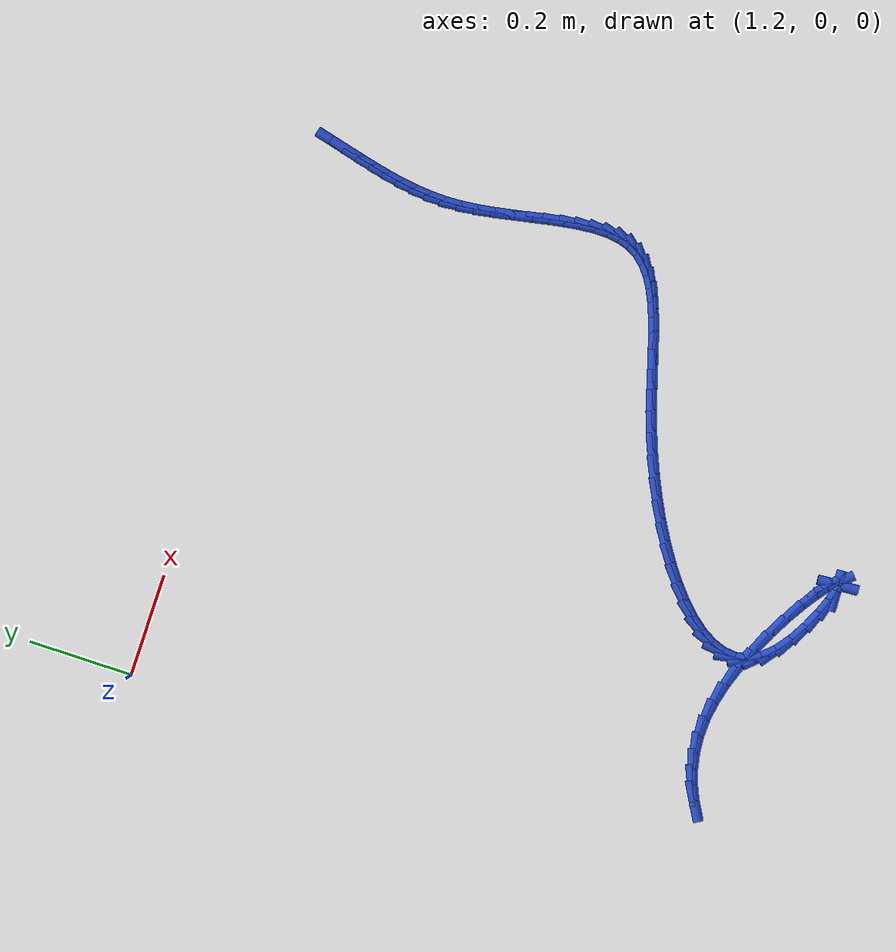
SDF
<sdf version="1.6">
 <world name="default">
  <model name="ground_plane">
   <static>1</static>
   <link name="link">
    <collision name="collision">
     <geometry><plane><normal>0 0 1</normal><size>100 100</size></plane></geometry>
     <surface><friction><ode><mu>100</mu><mu2>50</mu2></ode></friction></surface>
    </collision>
    <visual name="visual">
     <cast_shadows>0</cast_shadows>
     <geometry><plane><normal>0 0 1</normal><size>100 100</size></plane></geometry>
     <material>
      <script><uri>file://media/materials/scripts/gazebo.material</uri><name>Gazebo/WhiteGlow</name></script>
     </material>
    </visual>
   </link>
  </model>
  <model name="line">
   <link name="link_138">
    <pose>2.2774272784423375 -0.04782613580901961 0.01 0 1.57 1.3276419151975256</pose>
    <collision name="collision">
     <geometry><cylinder><radius>0.01</radius><length>0.08</length></cylinder></geometry>
    </collision>
    <visual name="visual">
     <material>
      <script><name>Gazebo/Blue</name><uri>file://media/materials/scripts/gazebo.material</uri></script>
     </material>
     <geometry><cylinder><radius>0.01</radius><length>0.08</length></cylinder></geometry>
    </visual>
   </link>
   <link name="link_139">
    <pose>2.2702082592243316 -0.07692773679852999 0.01 0 1.57 1.3271912694191266</pose>
    <collision name="collision">
     <geometry><cylinder><radius>0.01</radius><length>0.08</length></cylinder></geometry>
    </collision>
    <visual name="visual">
     <material>
      <script><name>Gazebo/Blue</name><uri>file://media/materials/scripts/gazebo.material</uri></script>
     </material>
     <geometry><cylinder><radius>0.01</radius><length>0.08</length></cylinder></geometry>
    </visual>
   </link>
   <link name="link_140">
    <pose>2.26309164769325 -0.10556128326286922 0.01 0 1.57 1.3374437470087495</pose>
    <collision name="collision">
     <geometry><cylinder><radius>0.01</radius><length>0.08</length></cylinder></geometry>
    </collision>
    <visual name="visual">
     <material>
      <script><name>Gazebo/Blue</name><uri>file://media/materials/scripts/gazebo.material</uri></script>
     </material>
     <geometry><cylinder><radius>0.01</radius><length>0.08</length></cylinder></geometry>
    </visual>
   </link>
   <link name="link_141">
    <pose>2.2563505228808722 -0.13392316893767106 0.01 0 1.57 1.3586506619026855</pose>
    <collision name="collision">
     <geometry><cylinder><radius>0.01</radius><length>0.08</length></cylinder></geometry>
    </collision>
    <visual name="visual">
     <material>
      <script><name>Gazebo/Blue</name><uri>file://media/materials/scripts/gazebo.material</uri></script>
     </material>
     <geometry><cylinder><radius>0.01</radius><length>0.08</length></cylinder></geometry>
    </visual>
   </link>
   <link name="link_142">
    <pose>2.250257963818977 -0.16220978755857063 0.01 0 1.57 1.3907428237051098</pose>
    <collision name="collision">
     <geometry><cylinder><radius>0.01</radius><length>0.08</length></cylinder></geometry>
    </collision>
    <visual name="visual">
     <material>
      <script><name>Gazebo/Blue</name><uri>file://media/materials/scripts/gazebo.material</uri></script>
     </material>
     <geometry><cylinder><radius>0.01</radius><length>0.08</length></cylinder></geometry>
    </visual>
   </link>
   <link name="link_143">
    <pose>2.245087049539344 -0.19061753286120275 0.01 0 1.57 1.4332490091658723</pose>
    <collision name="collision">
     <geometry><cylinder><radius>0.01</radius><length>0.08</length></cylinder></geometry>
    </collision>
    <visual name="visual">
     <material>
      <script><name>Gazebo/Blue</name><uri>file://media/materials/scripts/gazebo.material</uri></script>
     </material>
     <geometry><cylinder><radius>0.01</radius><length>0.08</length></cylinder></geometry>
    </visual>
   </link>
   <link name="link_144">
    <pose>2.24111085907375 -0.219342798581202 0.01 0 1.57 1.4852172846113332</pose>
    <collision name="collision">
     <geometry><cylinder><radius>0.01</radius><length>0.08</length></cylinder></geometry>
    </collision>
    <visual name="visual">
     <material>
      <script><name>Gazebo/Blue</name><uri>file://media/materials/scripts/gazebo.material</uri></script>
     </material>
     <geometry><cylinder><radius>0.01</radius><length>0.08</length></cylinder></geometry>
    </visual>
   </link>
   <link name="link_145">
    <pose>2.2386024714539747 -0.24858197845420324 0.01 0 1.57 1.5451752610625398</pose>
    <collision name="collision">
     <geometry><cylinder><radius>0.01</radius><length>0.08</length></cylinder></geometry>
    </collision>
    <visual name="visual">
     <material>
      <script><name>Gazebo/Blue</name><uri>file://media/materials/scripts/gazebo.material</uri></script>
     </material>
     <geometry><cylinder><radius>0.01</radius><length>0.08</length></cylinder></geometry>
    </visual>
   </link>
   <link name="link_146">
    <pose>2.237834965711797 -0.278531466215842 0.01 0 1.57 -1.5304236022121271</pose>
    <collision name="collision">
     <geometry><cylinder><radius>0.01</radius><length>0.08</length></cylinder></geometry>
    </collision>
    <visual name="visual">
     <material>
      <script><name>Gazebo/Blue</name><uri>file://media/materials/scripts/gazebo.material</uri></script>
     </material>
     <geometry><cylinder><radius>0.01</radius><length>0.08</length></cylinder></geometry>
    </visual>
   </link>
   <link name="link_147">
    <pose>2.2390813906234137 -0.30938763568670624 0.01 0 1.57 -1.465590602631579</pose>
    <collision name="collision">
     <geometry><cylinder><radius>0.01</radius><length>0.08</length></cylinder></geometry>
    </collision>
    <visual name="visual">
     <material>
      <script><name>Gazebo/Blue</name><uri>file://media/materials/scripts/gazebo.material</uri></script>
     </material>
     <geometry><cylinder><radius>0.01</radius><length>0.08</length></cylinder></geometry>
    </visual>
   </link>
   <link name="link_148">
    <pose>2.2424442932204673 -0.3412346318117775 0.01 0 1.57 -1.4180277893143194</pose>
    <collision name="collision">
     <geometry><cylinder><radius>0.01</radius><length>0.08</length></cylinder></geometry>
    </collision>
    <visual name="visual">
     <material>
      <script><name>Gazebo/Blue</name><uri>file://media/materials/scripts/gazebo.material</uri></script>
     </material>
     <geometry><cylinder><radius>0.01</radius><length>0.08</length></cylinder></geometry>
    </visual>
   </link>
   <link name="link_149">
    <pose>2.2474553760674434 -0.37378085421527685 0.01 0 1.57 -1.3881673383838014</pose>
    <collision name="collision">
     <geometry><cylinder><radius>0.01</radius><length>0.08</length></cylinder></geometry>
    </collision>
    <visual name="visual">
     <material>
      <script><name>Gazebo/Blue</name><uri>file://media/materials/scripts/gazebo.material</uri></script>
     </material>
     <geometry><cylinder><radius>0.01</radius><length>0.08</length></cylinder></geometry>
    </visual>
   </link>
   <link name="link_150">
    <pose>2.253527013107686 -0.4066561571844655 0.01 0 1.57 -1.3740533834683193</pose>
    <collision name="collision">
     <geometry><cylinder><radius>0.01</radius><length>0.08</length></cylinder></geometry>
    </collision>
    <visual name="visual">
     <material>
      <script><name>Gazebo/Blue</name><uri>file://media/materials/scripts/gazebo.material</uri></script>
     </material>
     <geometry><cylinder><radius>0.01</radius><length>0.08</length></cylinder></geometry>
    </visual>
   </link>
   <link name="link_151">
    <pose>2.2600715782845433 -0.43949039500660486 0.01 0 1.57 -1.3750246088527942</pose>
    <collision name="collision">
     <geometry><cylinder><radius>0.01</radius><length>0.08</length></cylinder></geometry>
    </collision>
    <visual name="visual">
     <material>
      <script><name>Gazebo/Blue</name><uri>file://media/materials/scripts/gazebo.material</uri></script>
     </material>
     <geometry><cylinder><radius>0.01</radius><length>0.08</length></cylinder></geometry>
    </visual>
   </link>
   <link name="link_152">
    <pose>2.26650144554136 -0.47191342196895614 0.01 0 1.57 -1.3917226716313364</pose>
    <collision name="collision">
     <geometry><cylinder><radius>0.01</radius><length>0.08</length></cylinder></geometry>
    </collision>
    <visual name="visual">
     <material>
      <script><name>Gazebo/Blue</name><uri>file://media/materials/scripts/gazebo.material</uri></script>
     </material>
     <geometry><cylinder><radius>0.01</radius><length>0.08</length></cylinder></geometry>
    </visual>
   </link>
   <link name="link_153">
    <pose>2.2722289888214826 -0.5035550923587806 0.01 0 1.57 -1.426269325264949</pose>
    <collision name="collision">
     <geometry><cylinder><radius>0.01</radius><length>0.08</length></cylinder></geometry>
    </collision>
    <visual name="visual">
     <material>
      <script><name>Gazebo/Blue</name><uri>file://media/materials/scripts/gazebo.material</uri></script>
     </material>
     <geometry><cylinder><radius>0.01</radius><length>0.08</length></cylinder></geometry>
    </visual>
   </link>
   <link name="link_154">
    <pose>2.276666582068258 -0.5340452604633397 0.01 0 1.57 -1.4826529249721707</pose>
    <collision name="collision">
     <geometry><cylinder><radius>0.01</radius><length>0.08</length></cylinder></geometry>
    </collision>
    <visual name="visual">
     <material>
      <script><name>Gazebo/Blue</name><uri>file://media/materials/scripts/gazebo.material</uri></script>
     </material>
     <geometry><cylinder><radius>0.01</radius><length>0.08</length></cylinder></geometry>
    </visual>
   </link>
   <link name="link_155">
    <pose>2.279226599225033 -0.5630137805698954 0.01 0 1.57 -1.5672946249571433</pose>
    <collision name="collision">
     <geometry><cylinder><radius>0.01</radius><length>0.08</length></cylinder></geometry>
    </collision>
    <visual name="visual">
     <material>
      <script><name>Gazebo/Blue</name><uri>file://media/materials/scripts/gazebo.material</uri></script>
     </material>
     <geometry><cylinder><radius>0.01</radius><length>0.08</length></cylinder></geometry>
    </visual>
   </link>
   <link name="link_156">
    <pose>2.279321414235152 -0.5900905069657072 0.01 0 1.57 1.4521525194433949</pose>
    <collision name="collision">
     <geometry><cylinder><radius>0.01</radius><length>0.08</length></cylinder></geometry>
    </collision>
    <visual name="visual">
     <material>
      <script><name>Gazebo/Blue</name><uri>file://media/materials/scripts/gazebo.material</uri></script>
     </material>
     <geometry><cylinder><radius>0.01</radius><length>0.08</length></cylinder></geometry>
    </visual>
   </link>
   <link name="link_157">
    <pose>2.276363401041963 -0.6149052939380376 0.01 0 1.57 1.2816809872661257</pose>
    <collision name="collision">
     <geometry><cylinder><radius>0.01</radius><length>0.08</length></cylinder></geometry>
    </collision>
    <visual name="visual">
     <material>
      <script><name>Gazebo/Blue</name><uri>file://media/materials/scripts/gazebo.material</uri></script>
     </material>
     <geometry><cylinder><radius>0.01</radius><length>0.08</length></cylinder></geometry>
    </visual>
   </link>
   <link name="link_158">
    <pose>2.269765117325299 -0.6370881568360058 0.01 0 1.57 1.068499638430871</pose>
    <collision name="collision">
     <geometry><cylinder><radius>0.01</radius><length>0.08</length></cylinder></geometry>
    </collision>
    <visual name="visual">
     <material>
      <script><name>Gazebo/Blue</name><uri>file://media/materials/scripts/gazebo.material</uri></script>
     </material>
     <geometry><cylinder><radius>0.01</radius><length>0.08</length></cylinder></geometry>
    </visual>
   </link>
   <link name="link_159">
    <pose>2.2591349501518008 -0.6564407734012988 0.01 0 1.57 0.8598730178982668</pose>
    <collision name="collision">
     <geometry><cylinder><radius>0.01</radius><length>0.08</length></cylinder></geometry>
    </collision>
    <visual name="visual">
     <material>
      <script><name>Gazebo/Blue</name><uri>file://media/materials/scripts/gazebo.material</uri></script>
     </material>
     <geometry><cylinder><radius>0.01</radius><length>0.08</length></cylinder></geometry>
    </visual>
   </link>
   <link name="link_160">
    <pose>2.2446491073890975 -0.6732625683115203 0.01 0 1.57 0.682447488541908</pose>
    <collision name="collision">
     <geometry><cylinder><radius>0.01</radius><length>0.08</length></cylinder></geometry>
    </collision>
    <visual name="visual">
     <material>
      <script><name>Gazebo/Blue</name><uri>file://media/materials/scripts/gazebo.material</uri></script>
     </material>
     <geometry><cylinder><radius>0.01</radius><length>0.08</length></cylinder></geometry>
    </visual>
   </link>
   <link name="link_161">
    <pose>2.226586126234671 -0.6879426672737198 0.01 0 1.57 0.5442170963373851</pose>
    <collision name="collision">
     <geometry><cylinder><radius>0.01</radius><length>0.08</length></cylinder></geometry>
    </collision>
    <visual name="visual">
     <material>
      <script><name>Gazebo/Blue</name><uri>file://media/materials/scripts/gazebo.material</uri></script>
     </material>
     <geometry><cylinder><radius>0.01</radius><length>0.08</length></cylinder></geometry>
    </visual>
   </link>
   <link name="link_162">
    <pose>2.2052245438860023 -0.7008701959949464 0.01 0 1.57 0.4428726690386801</pose>
    <collision name="collision">
     <geometry><cylinder><radius>0.01</radius><length>0.08</length></cylinder></geometry>
    </collision>
    <visual name="visual">
     <material>
      <script><name>Gazebo/Blue</name><uri>file://media/materials/scripts/gazebo.material</uri></script>
     </material>
     <geometry><cylinder><radius>0.01</radius><length>0.08</length></cylinder></geometry>
    </visual>
   </link>
   <link name="link_163">
    <pose>2.180842897540574 -0.7124342801822497 0.01 0 1.57 0.37223132631340194</pose>
    <collision name="collision">
     <geometry><cylinder><radius>0.01</radius><length>0.08</length></cylinder></geometry>
    </collision>
    <visual name="visual">
     <material>
      <script><name>Gazebo/Blue</name><uri>file://media/materials/scripts/gazebo.material</uri></script>
     </material>
     <geometry><cylinder><radius>0.01</radius><length>0.08</length></cylinder></geometry>
    </visual>
   </link>
   <link name="link_164">
    <pose>2.153719724395865 -0.723024045542679 0.01 0 1.57 0.32607961530594365</pose>
    <collision name="collision">
     <geometry><cylinder><radius>0.01</radius><length>0.08</length></cylinder></geometry>
    </collision>
    <visual name="visual">
     <material>
      <script><name>Gazebo/Blue</name><uri>file://media/materials/scripts/gazebo.material</uri></script>
     </material>
     <geometry><cylinder><radius>0.01</radius><length>0.08</length></cylinder></geometry>
    </visual>
   </link>
   <link name="link_165">
    <pose>2.1241335616493595 -0.7330286177832832 0.01 0 1.57 0.2994455321876534</pose>
    <collision name="collision">
     <geometry><cylinder><radius>0.01</radius><length>0.08</length></cylinder></geometry>
    </collision>
    <visual name="visual">
     <material>
      <script><name>Gazebo/Blue</name><uri>file://media/materials/scripts/gazebo.material</uri></script>
     </material>
     <geometry><cylinder><radius>0.01</radius><length>0.08</length></cylinder></geometry>
    </visual>
   </link>
   <link name="link_166">
    <pose>2.0923629464985387 -0.7428371226111118 0.01 0 1.57 0.2886922355218642</pose>
    <collision name="collision">
     <geometry><cylinder><radius>0.01</radius><length>0.08</length></cylinder></geometry>
    </collision>
    <visual name="visual">
     <material>
      <script><name>Gazebo/Blue</name><uri>file://media/materials/scripts/gazebo.material</uri></script>
     </material>
     <geometry><cylinder><radius>0.01</radius><length>0.08</length></cylinder></geometry>
    </visual>
   </link>
   <link name="link_167">
    <pose>2.0586864161408833 -0.752838685733214 0.01 0 1.57 0.29126382219915853</pose>
    <collision name="collision">
     <geometry><cylinder><radius>0.01</radius><length>0.08</length></cylinder></geometry>
    </collision>
    <visual name="visual">
     <material>
      <script><name>Gazebo/Blue</name><uri>file://media/materials/scripts/gazebo.material</uri></script>
     </material>
     <geometry><cylinder><radius>0.01</radius><length>0.08</length></cylinder></geometry>
    </visual>
   </link>
   <link name="link_168">
    <pose>2.023382507773875 -0.7634224328566395 0.01 0 1.57 0.30539513171278077</pose>
    <collision name="collision">
     <geometry><cylinder><radius>0.01</radius><length>0.08</length></cylinder></geometry>
    </collision>
    <visual name="visual">
     <material>
      <script><name>Gazebo/Blue</name><uri>file://media/materials/scripts/gazebo.material</uri></script>
     </material>
     <geometry><cylinder><radius>0.01</radius><length>0.08</length></cylinder></geometry>
    </visual>
   </link>
   <link name="link_169">
    <pose>1.9867297585949957 -0.7749774896884372 0.01 0 1.57 0.329867335210827</pose>
    <collision name="collision">
     <geometry><cylinder><radius>0.01</radius><length>0.08</length></cylinder></geometry>
    </collision>
    <visual name="visual">
     <material>
      <script><name>Gazebo/Blue</name><uri>file://media/materials/scripts/gazebo.material</uri></script>
     </material>
     <geometry><cylinder><radius>0.01</radius><length>0.08</length></cylinder></geometry>
    </visual>
   </link>
   <link name="link_170">
    <pose>1.9490067058017262 -0.7878929819356564 0.01 0 1.57 0.3637562878185311</pose>
    <collision name="collision">
     <geometry><cylinder><radius>0.01</radius><length>0.08</length></cylinder></geometry>
    </collision>
    <visual name="visual">
     <material>
      <script><name>Gazebo/Blue</name><uri>file://media/materials/scripts/gazebo.material</uri></script>
     </material>
     <geometry><cylinder><radius>0.01</radius><length>0.08</length></cylinder></geometry>
    </visual>
   </link>
   <link name="link_171">
    <pose>1.9104937753584834 -0.8025547551594489 0.01 0 1.57 0.40289719890437903</pose>
    <collision name="collision">
     <geometry><cylinder><radius>0.01</radius><length>0.08</length></cylinder></geometry>
    </collision>
    <visual name="visual">
     <material>
      <script><name>Gazebo/Blue</name><uri>file://media/materials/scripts/gazebo.material</uri></script>
     </material>
     <geometry><cylinder><radius>0.01</radius><length>0.08</length></cylinder></geometry>
    </visual>
   </link>
   <link name="link_172">
    <pose>1.8715950705660718 -0.8191338694436072 0.01 0 1.57 0.44238584975611117</pose>
    <collision name="collision">
     <geometry><cylinder><radius>0.01</radius><length>0.08</length></cylinder></geometry>
    </collision>
    <visual name="visual">
     <material>
      <script><name>Gazebo/Blue</name><uri>file://media/materials/scripts/gazebo.material</uri></script>
     </material>
     <geometry><cylinder><radius>0.01</radius><length>0.08</length></cylinder></geometry>
    </visual>
   </link>
   <link name="link_173">
    <pose>1.8329125960902293 -0.8374576974965473 0.01 0 1.57 0.4833570563676312</pose>
    <collision name="collision">
     <geometry><cylinder><radius>0.01</radius><length>0.08</length></cylinder></geometry>
    </collision>
    <visual name="visual">
     <material>
      <script><name>Gazebo/Blue</name><uri>file://media/materials/scripts/gazebo.material</uri></script>
     </material>
     <geometry><cylinder><radius>0.01</radius><length>0.08</length></cylinder></geometry>
    </visual>
   </link>
   <link name="link_174">
    <pose>1.7950661263979828 -0.857322751924396 0.01 0 1.57 0.5275594798377511</pose>
    <collision name="collision">
     <geometry><cylinder><radius>0.01</radius><length>0.08</length></cylinder></geometry>
    </collision>
    <visual name="visual">
     <material>
      <script><name>Gazebo/Blue</name><uri>file://media/materials/scripts/gazebo.material</uri></script>
     </material>
     <geometry><cylinder><radius>0.01</radius><length>0.08</length></cylinder></geometry>
    </visual>
   </link>
   <link name="link_175">
    <pose>1.7586754359563563 -0.8785255453332821 0.01 0 1.57 0.5770347196770403</pose>
    <collision name="collision">
     <geometry><cylinder><radius>0.01</radius><length>0.08</length></cylinder></geometry>
    </collision>
    <visual name="visual">
     <material>
      <script><name>Gazebo/Blue</name><uri>file://media/materials/scripts/gazebo.material</uri></script>
     </material>
     <geometry><cylinder><radius>0.01</radius><length>0.08</length></cylinder></geometry>
    </visual>
   </link>
   <link name="link_176">
    <pose>1.7243602992323732 -0.900862590329332 0.01 0 1.57 0.6343910866658976</pose>
    <collision name="collision">
     <geometry><cylinder><radius>0.01</radius><length>0.08</length></cylinder></geometry>
    </collision>
    <visual name="visual">
     <material>
      <script><name>Gazebo/Blue</name><uri>file://media/materials/scripts/gazebo.material</uri></script>
     </material>
     <geometry><cylinder><radius>0.01</radius><length>0.08</length></cylinder></geometry>
    </visual>
   </link>
   <link name="link_177">
    <pose>1.6927404906930592 -0.924130399518675 0.01 0 1.57 0.7031816764640572</pose>
    <collision name="collision">
     <geometry><cylinder><radius>0.01</radius><length>0.08</length></cylinder></geometry>
    </collision>
    <visual name="visual">
     <material>
      <script><name>Gazebo/Blue</name><uri>file://media/materials/scripts/gazebo.material</uri></script>
     </material>
     <geometry><cylinder><radius>0.01</radius><length>0.08</length></cylinder></geometry>
    </visual>
   </link>
   <link name="link_178">
    <pose>1.6644357848054376 -0.9481254855074382 0.01 0 1.57 0.7884468464457635</pose>
    <collision name="collision">
     <geometry><cylinder><radius>0.01</radius><length>0.08</length></cylinder></geometry>
    </collision>
    <visual name="visual">
     <material>
      <script><name>Gazebo/Blue</name><uri>file://media/materials/scripts/gazebo.material</uri></script>
     </material>
     <geometry><cylinder><radius>0.01</radius><length>0.08</length></cylinder></geometry>
    </visual>
   </link>
   <link name="link_179">
    <pose>1.640065956036533 -0.9726443609017494 0.01 0 1.57 0.897435647171101</pose>
    <collision name="collision">
     <geometry><cylinder><radius>0.01</radius><length>0.08</length></cylinder></geometry>
    </collision>
    <visual name="visual">
     <material>
      <script><name>Gazebo/Blue</name><uri>file://media/materials/scripts/gazebo.material</uri></script>
     </material>
     <geometry><cylinder><radius>0.01</radius><length>0.08</length></cylinder></geometry>
    </visual>
   </link>
   <link name="link_180">
    <pose>1.6202507788533709 -0.997483538307737 0.01 0 1.57 1.0402413469911163</pose>
    <collision name="collision">
     <geometry><cylinder><radius>0.01</radius><length>0.08</length></cylinder></geometry>
    </collision>
    <visual name="visual">
     <material>
      <script><name>Gazebo/Blue</name><uri>file://media/materials/scripts/gazebo.material</uri></script>
     </material>
     <geometry><cylinder><radius>0.01</radius><length>0.08</length></cylinder></geometry>
    </visual>
   </link>
   <link name="link_181">
    <pose>1.6056100277229743 -1.022439530331529 0.01 0 1.57 1.2290335570255913</pose>
    <collision name="collision">
     <geometry><cylinder><radius>0.01</radius><length>0.08</length></cylinder></geometry>
    </collision>
    <visual name="visual">
     <material>
      <script><name>Gazebo/Blue</name><uri>file://media/materials/scripts/gazebo.material</uri></script>
     </material>
     <geometry><cylinder><radius>0.01</radius><length>0.08</length></cylinder></geometry>
    </visual>
   </link>
   <link name="link_182">
    <pose>1.596763477112369 -1.0473088495792515 0.01 0 1.57 1.4721485368391085</pose>
    <collision name="collision">
     <geometry><cylinder><radius>0.01</radius><length>0.08</length></cylinder></geometry>
    </collision>
    <visual name="visual">
     <material>
      <script><name>Gazebo/Blue</name><uri>file://media/materials/scripts/gazebo.material</uri></script>
     </material>
     <geometry><cylinder><radius>0.01</radius><length>0.08</length></cylinder></geometry>
    </visual>
   </link>
   <link name="link_183">
    <pose>1.5943309014885791 -1.0718880086570337 0.01 0 1.57 -1.3820357064345565</pose>
    <collision name="collision">
     <geometry><cylinder><radius>0.01</radius><length>0.08</length></cylinder></geometry>
    </collision>
    <visual name="visual">
     <material>
      <script><name>Gazebo/Blue</name><uri>file://media/materials/scripts/gazebo.material</uri></script>
     </material>
     <geometry><cylinder><radius>0.01</radius><length>0.08</length></cylinder></geometry>
    </visual>
   </link>
   <link name="link_184">
    <pose>1.5989320753186287 -1.095973520171003 0.01 0 1.57 -1.08816080200515</pose>
    <collision name="collision">
     <geometry><cylinder><radius>0.01</radius><length>0.08</length></cylinder></geometry>
    </collision>
    <visual name="visual">
     <material>
      <script><name>Gazebo/Blue</name><uri>file://media/materials/scripts/gazebo.material</uri></script>
     </material>
     <geometry><cylinder><radius>0.01</radius><length>0.08</length></cylinder></geometry>
    </visual>
   </link>
   <link name="link_185">
    <pose>1.6111867730695426 -1.1193618967272874 0.01 0 1.57 -0.8313939765818854</pose>
    <collision name="collision">
     <geometry><cylinder><radius>0.01</radius><length>0.08</length></cylinder></geometry>
    </collision>
    <visual name="visual">
     <material>
      <script><name>Gazebo/Blue</name><uri>file://media/materials/scripts/gazebo.material</uri></script>
     </material>
     <geometry><cylinder><radius>0.01</radius><length>0.08</length></cylinder></geometry>
    </visual>
   </link>
   <link name="link_186">
    <pose>1.6316915717770608 -1.1418453716048054 0.01 0 1.57 -0.6486232414025069</pose>
    <collision name="collision">
     <geometry><cylinder><radius>0.01</radius><length>0.08</length></cylinder></geometry>
    </collision>
    <visual name="visual">
     <material>
      <script><name>Gazebo/Blue</name><uri>file://media/materials/scripts/gazebo.material</uri></script>
     </material>
     <geometry><cylinder><radius>0.01</radius><length>0.08</length></cylinder></geometry>
    </visual>
   </link>
   <link name="link_187">
    <pose>1.6595111799398603 -1.162933587883949 0.01 0 1.57 -0.5335515451356777</pose>
    <collision name="collision">
     <geometry><cylinder><radius>0.01</radius><length>0.08</length></cylinder></geometry>
    </collision>
    <visual name="visual">
     <material>
      <script><name>Gazebo/Blue</name><uri>file://media/materials/scripts/gazebo.material</uri></script>
     </material>
     <geometry><cylinder><radius>0.01</radius><length>0.08</length></cylinder></geometry>
    </visual>
   </link>
   <link name="link_188">
    <pose>1.691251692829536 -1.181682637976025 0.01 0 1.57 -0.4486118441219627</pose>
    <collision name="collision">
     <geometry><cylinder><radius>0.01</radius><length>0.08</length></cylinder></geometry>
    </collision>
    <visual name="visual">
     <material>
      <script><name>Gazebo/Blue</name><uri>file://media/materials/scripts/gazebo.material</uri></script>
     </material>
     <geometry><cylinder><radius>0.01</radius><length>0.08</length></cylinder></geometry>
    </visual>
   </link>
   <link name="link_189">
    <pose>1.7232975533015784 -1.1971077251437219 0.01 0 1.57 -0.3691172370631855</pose>
    <collision name="collision">
     <geometry><cylinder><radius>0.01</radius><length>0.08</length></cylinder></geometry>
    </collision>
    <visual name="visual">
     <material>
      <script><name>Gazebo/Blue</name><uri>file://media/materials/scripts/gazebo.material</uri></script>
     </material>
     <geometry><cylinder><radius>0.01</radius><length>0.08</length></cylinder></geometry>
    </visual>
   </link>
   <link name="link_190">
    <pose>1.7520332042114821 -1.208224052649732 0.01 0 1.57 -0.2608935399589268</pose>
    <collision name="collision">
     <geometry><cylinder><radius>0.01</radius><length>0.08</length></cylinder></geometry>
    </collision>
    <visual name="visual">
     <material>
      <script><name>Gazebo/Blue</name><uri>file://media/materials/scripts/gazebo.material</uri></script>
     </material>
     <geometry><cylinder><radius>0.01</radius><length>0.08</length></cylinder></geometry>
    </visual>
   </link>
   <link name="link_191">
    <pose>1.7738430884147371 -1.2140468237567448 0.01 0 1.57 0.03742695602973269</pose>
    <collision name="collision">
     <geometry><cylinder><radius>0.01</radius><length>0.08</length></cylinder></geometry>
    </collision>
    <visual name="visual">
     <material>
      <script><name>Gazebo/Blue</name><uri>file://media/materials/scripts/gazebo.material</uri></script>
     </material>
     <geometry><cylinder><radius>0.01</radius><length>0.08</length></cylinder></geometry>
    </visual>
   </link>
   <link name="link_192">
    <pose>1.785184703273462 -1.2136221433234011 0.01 0 1.57 -1.5115262454526142</pose>
    <collision name="collision">
     <geometry><cylinder><radius>0.01</radius><length>0.08</length></cylinder></geometry>
    </collision>
    <visual name="visual">
     <material>
      <script><name>Gazebo/Blue</name><uri>file://media/materials/scripts/gazebo.material</uri></script>
     </material>
     <geometry><cylinder><radius>0.01</radius><length>0.08</length></cylinder></geometry>
    </visual>
   </link>
   <link name="link_193">
    <pose>1.784789248546942 -1.2069578779946162 0.01 0 1.57 -0.8311629225161334</pose>
    <collision name="collision">
     <geometry><cylinder><radius>0.01</radius><length>0.08</length></cylinder></geometry>
    </collision>
    <visual name="visual">
     <material>
      <script><name>Gazebo/Blue</name><uri>file://media/materials/scripts/gazebo.material</uri></script>
     </material>
     <geometry><cylinder><radius>0.01</radius><length>0.08</length></cylinder></geometry>
    </visual>
   </link>
   <link name="link_194">
    <pose>1.7740502395136102 -1.1951880371033319 0.01 0 1.57 -0.6762135759233993</pose>
    <collision name="collision">
     <geometry><cylinder><radius>0.01</radius><length>0.08</length></cylinder></geometry>
    </collision>
    <visual name="visual">
     <material>
      <script><name>Gazebo/Blue</name><uri>file://media/materials/scripts/gazebo.material</uri></script>
     </material>
     <geometry><cylinder><radius>0.01</radius><length>0.08</length></cylinder></geometry>
    </visual>
   </link>
   <link name="link_195">
    <pose>1.7545125756763704 -1.1795106645554958 0.01 0 1.57 -0.6014697351425894</pose>
    <collision name="collision">
     <geometry><cylinder><radius>0.01</radius><length>0.08</length></cylinder></geometry>
    </collision>
    <visual name="visual">
     <material>
      <script><name>Gazebo/Blue</name><uri>file://media/materials/scripts/gazebo.material</uri></script>
     </material>
     <geometry><cylinder><radius>0.01</radius><length>0.08</length></cylinder></geometry>
    </visual>
   </link>
   <link name="link_196">
    <pose>1.7277211565381272 -1.1611238042570544 0.01 0 1.57 -0.5493784377605612</pose>
    <collision name="collision">
     <geometry><cylinder><radius>0.01</radius><length>0.08</length></cylinder></geometry>
    </collision>
    <visual name="visual">
     <material>
      <script><name>Gazebo/Blue</name><uri>file://media/materials/scripts/gazebo.material</uri></script>
     </material>
     <geometry><cylinder><radius>0.01</radius><length>0.08</length></cylinder></geometry>
    </visual>
   </link>
   <link name="link_197">
    <pose>1.6952208816017857 -1.141225500113956 0.01 0 1.57 -0.5038138312933687</pose>
    <collision name="collision">
     <geometry><cylinder><radius>0.01</radius><length>0.08</length></cylinder></geometry>
    </collision>
    <visual name="visual">
     <material>
      <script><name>Gazebo/Blue</name><uri>file://media/materials/scripts/gazebo.material</uri></script>
     </material>
     <geometry><cylinder><radius>0.01</radius><length>0.08</length></cylinder></geometry>
    </visual>
   </link>
   <link name="link_198">
    <pose>1.65855665037025 -1.1210137960321465 0.01 0 1.57 -0.4572206423813086</pose>
    <collision name="collision">
     <geometry><cylinder><radius>0.01</radius><length>0.08</length></cylinder></geometry>
    </collision>
    <visual name="visual">
     <material>
      <script><name>Gazebo/Blue</name><uri>file://media/materials/scripts/gazebo.material</uri></script>
     </material>
     <geometry><cylinder><radius>0.01</radius><length>0.08</length></cylinder></geometry>
    </visual>
   </link>
   <link name="link_199">
    <pose>1.6192733623464242 -1.1016867359175737 0.01 0 1.57 -0.4038095242373734</pose>
    <collision name="collision">
     <geometry><cylinder><radius>0.01</radius><length>0.08</length></cylinder></geometry>
    </collision>
    <visual name="visual">
     <material>
      <script><name>Gazebo/Blue</name><uri>file://media/materials/scripts/gazebo.material</uri></script>
     </material>
     <geometry><cylinder><radius>0.01</radius><length>0.08</length></cylinder></geometry>
    </visual>
   </link>
   <link name="link_200">
    <pose>1.5789159170332159 -1.0844423636761853 0.01 0 1.57 -0.33674839733449846</pose>
    <collision name="collision">
     <geometry><cylinder><radius>0.01</radius><length>0.08</length></cylinder></geometry>
    </collision>
    <visual name="visual">
     <material>
      <script><name>Gazebo/Blue</name><uri>file://media/materials/scripts/gazebo.material</uri></script>
     </material>
     <geometry><cylinder><radius>0.01</radius><length>0.08</length></cylinder></geometry>
    </visual>
   </link>
   <link name="link_201">
    <pose>1.5390292139335273 -1.070478723213928 0.01 0 1.57 -0.24832932855842982</pose>
    <collision name="collision">
     <geometry><cylinder><radius>0.01</radius><length>0.08</length></cylinder></geometry>
    </collision>
    <visual name="visual">
     <material>
      <script><name>Gazebo/Blue</name><uri>file://media/materials/scripts/gazebo.material</uri></script>
     </material>
     <geometry><cylinder><radius>0.01</radius><length>0.08</length></cylinder></geometry>
    </visual>
   </link>
   <link name="link_202">
    <pose>1.50097244916114 -1.0608289327223592 0.01 0 1.57 -0.14555653478378297</pose>
    <collision name="collision">
     <geometry><cylinder><radius>0.01</radius><length>0.08</length></cylinder></geometry>
    </collision>
    <visual name="visual">
     <material>
      <script><name>Gazebo/Blue</name><uri>file://media/materials/scripts/gazebo.material</uri></script>
     </material>
     <geometry><cylinder><radius>0.01</radius><length>0.08</length></cylinder></geometry>
    </visual>
   </link>
   <link name="link_203">
    <pose>1.4650144403806669 -1.0555577304106751 0.01 0 1.57 -0.034710656897361386</pose>
    <collision name="collision">
     <geometry><cylinder><radius>0.01</radius><length>0.08</length></cylinder></geometry>
    </collision>
    <visual name="visual">
     <material>
      <script><name>Gazebo/Blue</name><uri>file://media/materials/scripts/gazebo.material</uri></script>
     </material>
     <geometry><cylinder><radius>0.01</radius><length>0.08</length></cylinder></geometry>
    </visual>
   </link>
   <link name="link_204">
    <pose>1.43102730620193 -1.054377540643302 0.01 0 1.57 0.08141139486753145</pose>
    <collision name="collision">
     <geometry><cylinder><radius>0.01</radius><length>0.08</length></cylinder></geometry>
    </collision>
    <visual name="visual">
     <material>
      <script><name>Gazebo/Blue</name><uri>file://media/materials/scripts/gazebo.material</uri></script>
     </material>
     <geometry><cylinder><radius>0.01</radius><length>0.08</length></cylinder></geometry>
    </visual>
   </link>
   <link name="link_205">
    <pose>1.398882597043551 -1.0570002831663055 0.01 0 1.57 0.19902065807867256</pose>
    <collision name="collision">
     <geometry><cylinder><radius>0.01</radius><length>0.08</length></cylinder></geometry>
    </collision>
    <visual name="visual">
     <material>
      <script><name>Gazebo/Blue</name><uri>file://media/materials/scripts/gazebo.material</uri></script>
     </material>
     <geometry><cylinder><radius>0.01</radius><length>0.08</length></cylinder></geometry>
    </visual>
   </link>
   <link name="link_206">
    <pose>1.3684518633241525 -1.0631378777257532 0.01 0 1.57 0.3139080779053431</pose>
    <collision name="collision">
     <geometry><cylinder><radius>0.01</radius><length>0.08</length></cylinder></geometry>
    </collision>
    <visual name="visual">
     <material>
      <script><name>Gazebo/Blue</name><uri>file://media/materials/scripts/gazebo.material</uri></script>
     </material>
     <geometry><cylinder><radius>0.01</radius><length>0.08</length></cylinder></geometry>
    </visual>
   </link>
   <link name="link_207">
    <pose>1.3396066554623551 -1.0725022440677097 0.01 0 1.57 0.4221978391803358</pose>
    <collision name="collision">
     <geometry><cylinder><radius>0.01</radius><length>0.08</length></cylinder></geometry>
    </collision>
    <visual name="visual">
     <material>
      <script><name>Gazebo/Blue</name><uri>file://media/materials/scripts/gazebo.material</uri></script>
     </material>
     <geometry><cylinder><radius>0.01</radius><length>0.08</length></cylinder></geometry>
    </visual>
   </link>
   <link name="link_208">
    <pose>1.3122185238767816 -1.084805301938243 0.01 0 1.57 0.5209529168281727</pose>
    <collision name="collision">
     <geometry><cylinder><radius>0.01</radius><length>0.08</length></cylinder></geometry>
    </collision>
    <visual name="visual">
     <material>
      <script><name>Gazebo/Blue</name><uri>file://media/materials/scripts/gazebo.material</uri></script>
     </material>
     <geometry><cylinder><radius>0.01</radius><length>0.08</length></cylinder></geometry>
    </visual>
   </link>
  </model>
 </world>
</sdf>
